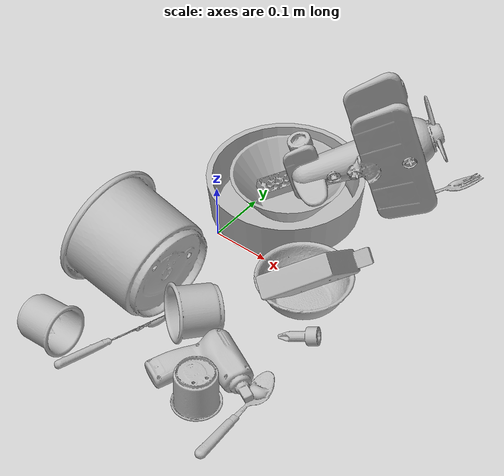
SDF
<sdf version="1.4">
  <world name="default">
    <light name="light1" type="point">
      <pose>0 0 1 0 0 0</pose>
      <diffuse>3 3 3 1</diffuse>
      <specular>3 3 3 1</specular>
    </light>
    <light name="light2" type="point">
      <pose>0 0.5 2 0 0 0</pose>
      <diffuse>1 1 1 1</diffuse>
      <specular>1 1 1 1</specular>
    </light>
    <light name="light3" type="point">
      <pose>0 0.5 2 0 0 0</pose>
      <diffuse>3 3 3 1</diffuse>
      <specular>3 3 3 1</specular>
    </light>
    <scene>
      <ambient>0.7 0.7 0.7</ambient>
    </scene>
    <model name="plate1">
      <link name="link_plate1">
        <collision name="default">
          <geometry>
            <mesh>
              <uri>model://pan_tefal/collision_meshes/collision.obj</uri>
              <scale>1.0 1.0 1.0</scale>
            </mesh>
          </geometry>
          <surface>
            <friction>
              <ode>
                <mu>0.5</mu>
                <mu2>0.5</mu2>
              </ode>
            </friction>
          <contact>
        <ode>
            <max_vel>0</max_vel>
            <min_depth>0.0001</min_depth>
            <kp>1e8</kp>
        </ode>
    </contact></surface>
        </collision>
        <visual name="default">
          <geometry>
            <mesh>
              <uri>model://pan_tefal/visual_meshes/visual.dae</uri>
              <scale>1.0 1.0 1.0</scale>
            </mesh>
          </geometry>
        </visual>
        <inertial>
          <mass>1.2414644956588745</mass>
          <pose>-0.0001800298341549933 3.278589065303095e-05 -0.00851493515074253 0.0008190165640447202 -0.0003301348973125405 -0.33185319573483557</pose>
          <inertia>
            <ixx>0.00856977</ixx>
            <iyy>0.008625018</iyy>
            <izz>0.015775295</izz>
            <ixy>0</ixy>
            <ixz>0</ixz>
            <iyz>0</iyz>
          </inertia>
        </inertial>
      </link>
      <pose>0.05006646364927292 0.11798125505447388 0.03796384483575821 -0.0004901761708740189 -0.00046323320975314347 0.4668485131363899</pose>
    </model>
    <model name="cup1">
      <link name="link_cup1">
        <collision name="default">
          <geometry>
            <mesh>
              <uri>model://j_cups/collision_meshes/collision.obj</uri>
              <scale>2.0 2.0 2.0</scale>
            </mesh>
          </geometry>
          <surface>
            <friction>
              <ode>
                <mu>0.5</mu>
                <mu2>0.5</mu2>
              </ode>
            </friction>
          <contact>
        <ode>
            <max_vel>0</max_vel>
            <min_depth>0.0001</min_depth>
            <kp>1e8</kp>
        </ode>
    </contact></surface>
        </collision>
        <visual name="default">
          <geometry>
            <mesh>
              <uri>model://j_cups/visual_meshes/visual.dae</uri>
              <scale>2.0 2.0 2.0</scale>
            </mesh>
          </geometry>
        </visual>
        <inertial>
          <mass>0.42814481258392334</mass>
          <pose>0.0012329709716141224 0.0010797895956784487 -0.002695801667869091 0.030303634199985552 0.037580068488308346 0.43868666904956827</pose>
          <inertia>
            <ixx>0.0025146077</ixx>
            <iyy>0.0025407567</iyy>
            <izz>0.0028988216</izz>
            <ixy>0</ixy>
            <ixz>0</ixz>
            <iyz>0</iyz>
          </inertia>
        </inertial>
      </link>
      <pose>-0.01062968373298645 -0.1829283982515335 0.09429340809583664 -1.4235240510137792 0.5569511798065968 1.569264719696219</pose>
    </model>
    <model name="silverware1">
      <link name="link_silverware1">
        <collision name="default">
          <geometry>
            <mesh>
              <uri>model://fork/collision_meshes/collision.obj</uri>
              <scale>1.0 1.0 1.0</scale>
            </mesh>
          </geometry>
          <surface>
            <friction>
              <ode>
                <mu>0.5</mu>
                <mu2>0.5</mu2>
              </ode>
            </friction>
          <contact>
        <ode>
            <max_vel>0</max_vel>
            <min_depth>0.0001</min_depth>
            <kp>1e8</kp>
        </ode>
    </contact></surface>
        </collision>
        <visual name="default">
          <geometry>
            <mesh>
              <uri>model://fork/visual_meshes/visual.dae</uri>
              <scale>1.0 1.0 1.0</scale>
            </mesh>
          </geometry>
        </visual>
        <inertial>
          <mass>0.013809523545205593</mass>
          <pose>-0.029570044949650764 0.0004658822435885668 0.00032188615296036005 -0.013551743215227608 -0.010977837587661193 0.014453899243146438</pose>
          <inertia>
            <ixx>4.84102e-07</ixx>
            <iyy>3.6052697e-05</iyy>
            <izz>3.6269223e-05</izz>
            <ixy>0</ixy>
            <ixz>0</ixz>
            <iyz>0</iyz>
          </inertia>
        </inertial>
      </link>
      <pose>0.22179487347602844 0.2940064072608948 0.005730495322495699 -0.18519065526674178 0.024507565751693005 1.097663109065762</pose>
    </model>
    <model name="silverware2">
      <link name="link_silverware2">
        <collision name="default">
          <geometry>
            <mesh>
              <uri>model://knife/collision_meshes/collision.obj</uri>
              <scale>1.0 1.0 1.0</scale>
            </mesh>
          </geometry>
          <surface>
            <friction>
              <ode>
                <mu>0.5</mu>
                <mu2>0.5</mu2>
              </ode>
            </friction>
          <contact>
        <ode>
            <max_vel>0</max_vel>
            <min_depth>0.0001</min_depth>
            <kp>1e8</kp>
        </ode>
    </contact></surface>
        </collision>
        <visual name="default">
          <geometry>
            <mesh>
              <uri>model://knife/visual_meshes/visual.dae</uri>
              <scale>1.0 1.0 1.0</scale>
            </mesh>
          </geometry>
        </visual>
        <inertial>
          <mass>0.021972408518195152</mass>
          <pose>-0.023785250261425972 0.0015275123296305537 5.0620161346159875e-05 0.07305788583029697 0.01724841890740089 -0.007409824444555058</pose>
          <inertia>
            <ixx>6.2366604e-07</ixx>
            <iyy>8.441444e-05</iyy>
            <izz>8.46153e-05</izz>
            <ixy>0</ixy>
            <ixz>0</ixz>
            <iyz>0</iyz>
          </inertia>
        </inertial>
      </link>
      <pose>0.03301829844713211 -0.29524698853492737 0.008920611813664436 -0.8994075356330661 0.00419712599233709 1.2602644309417705</pose>
    </model>
    <model name="silverware3">
      <link name="link_silverware3">
        <collision name="default">
          <geometry>
            <mesh>
              <uri>model://spoon/collision_meshes/collision.obj</uri>
              <scale>1.0 1.0 1.0</scale>
            </mesh>
          </geometry>
          <surface>
            <friction>
              <ode>
                <mu>0.5</mu>
                <mu2>0.5</mu2>
              </ode>
            </friction>
          <contact>
        <ode>
            <max_vel>0</max_vel>
            <min_depth>0.0001</min_depth>
            <kp>1e8</kp>
        </ode>
    </contact></surface>
        </collision>
        <visual name="default">
          <geometry>
            <mesh>
              <uri>model://spoon/visual_meshes/visual.dae</uri>
              <scale>1.0 1.0 1.0</scale>
            </mesh>
          </geometry>
        </visual>
        <inertial>
          <mass>0.026694269850850105</mass>
          <pose>-0.005526325199753046 -0.0016034168656915426 -0.0007271653739735484 0.035216710718480135 -0.03906584501417282 0.00615060951780049</pose>
          <inertia>
            <ixx>1.484779e-06</ixx>
            <iyy>0.000101570804</iyy>
            <izz>0.000102303035</izz>
            <ixy>0</ixy>
            <ixz>0</ixz>
            <iyz>0</iyz>
          </inertia>
        </inertial>
      </link>
      <pose>0.28143927454948425 -0.30137524008750916 0.008342420682311058 -0.09182499700385206 0.025790426752216787 1.6401128008942205</pose>
    </model>
    <model name="cup3">
      <link name="link_cup3">
        <collision name="default">
          <geometry>
            <mesh>
              <uri>model://f_cups/collision_meshes/collision.obj</uri>
              <scale>1.0 1.0 1.0</scale>
            </mesh>
          </geometry>
          <surface>
            <friction>
              <ode>
                <mu>0.5</mu>
                <mu2>0.5</mu2>
              </ode>
            </friction>
          <contact>
        <ode>
            <max_vel>0</max_vel>
            <min_depth>0.0001</min_depth>
            <kp>1e8</kp>
        </ode>
    </contact></surface>
        </collision>
        <visual name="default">
          <geometry>
            <mesh>
              <uri>model://f_cups/visual_meshes/visual.dae</uri>
              <scale>1.0 1.0 1.0</scale>
            </mesh>
          </geometry>
        </visual>
        <inertial>
          <mass>0.09255705773830414</mass>
          <pose>-0.0031714672222733498 -0.0006240062648430467 -0.0036555363330990076 0.7862294428046025 -0.26079256257201844 -0.18237393521905715</pose>
          <inertia>
            <ixx>8.700612e-05</ixx>
            <iyy>9.127041e-05</iyy>
            <izz>9.501506e-05</izz>
            <ixy>0</ixy>
            <ixz>0</ixz>
            <iyz>0</iyz>
          </inertia>
        </inertial>
      </link>
      <pose>0.2149813324213028 -0.31102120876312256 0.036303818225860596 3.1415634831756893 4.2975695002306134e-05 -1.3698700192845634</pose>
    </model>
    <model name="cup4">
      <link name="link_cup4">
        <collision name="default">
          <geometry>
            <mesh>
              <uri>model://g_cups/collision_meshes/collision.obj</uri>
              <scale>1.0 1.0 1.0</scale>
            </mesh>
          </geometry>
          <surface>
            <friction>
              <ode>
                <mu>0.5</mu>
                <mu2>0.5</mu2>
              </ode>
            </friction>
          <contact>
        <ode>
            <max_vel>0</max_vel>
            <min_depth>0.0001</min_depth>
            <kp>1e8</kp>
        </ode>
    </contact></surface>
        </collision>
        <visual name="default">
          <geometry>
            <mesh>
              <uri>model://g_cups/visual_meshes/visual.dae</uri>
              <scale>1.0 1.0 1.0</scale>
            </mesh>
          </geometry>
        </visual>
        <inertial>
          <mass>0.09045539051294327</mass>
          <pose>-0.0007946272380650043 -4.206356970826164e-05 -0.0021329366136342287 -0.21382427470227655 -0.31410603394020525 0.31120189460551634</pose>
          <inertia>
            <ixx>0.000105581705</ixx>
            <iyy>0.000105222556</iyy>
            <izz>0.000109364446</izz>
            <ixy>0</ixy>
            <ixz>0</ixz>
            <iyz>0</iyz>
          </inertia>
        </inertial>
      </link>
      <pose>-0.04968921095132828 -0.35504260659217834 0.040030587464571 1.3048498937528477 -1.1772373893330441 1.788516306007703</pose>
    </model>
    <model name="cup5">
      <link name="link_cup5">
        <collision name="default">
          <geometry>
            <mesh>
              <uri>model://i_cups/collision_meshes/collision.obj</uri>
              <scale>1.0 1.0 1.0</scale>
            </mesh>
          </geometry>
          <surface>
            <friction>
              <ode>
                <mu>0.5</mu>
                <mu2>0.5</mu2>
              </ode>
            </friction>
          <contact>
        <ode>
            <max_vel>0</max_vel>
            <min_depth>0.0001</min_depth>
            <kp>1e8</kp>
        </ode>
    </contact></surface>
        </collision>
        <visual name="default">
          <geometry>
            <mesh>
              <uri>model://i_cups/visual_meshes/visual.dae</uri>
              <scale>1.0 1.0 1.0</scale>
            </mesh>
          </geometry>
        </visual>
        <inertial>
          <mass>0.0815454050898552</mass>
          <pose>0.0001123997790273279 0.00016797320859041065 -0.0008579009445384145 -0.02898318353055437 -0.03987301779891007 -0.3459082462056558</pose>
          <inertia>
            <ixx>0.0001129008</ixx>
            <iyy>0.000113895556</iyy>
            <izz>0.00012618494</izz>
            <ixy>0</ixy>
            <ixz>0</ixz>
            <iyz>0</iyz>
          </inertia>
        </inertial>
      </link>
      <pose>0.11493223160505295 -0.1942950189113617 0.04484616965055466 -0.34864573817462347 1.4337127328542698 -2.5308164459731772</pose>
    </model>
    <model name="bowl1">
      <link name="link_bowl1">
        <collision name="default">
          <geometry>
            <mesh>
              <uri>model://bowl/collision_meshes/collision.obj</uri>
              <scale>1.0 1.0 1.0</scale>
            </mesh>
          </geometry>
          <surface>
            <friction>
              <ode>
                <mu>0.5</mu>
                <mu2>0.5</mu2>
              </ode>
            </friction>
          <contact>
        <ode>
            <max_vel>0</max_vel>
            <min_depth>0.0001</min_depth>
            <kp>1e8</kp>
        </ode>
    </contact></surface>
        </collision>
        <visual name="default">
          <geometry>
            <mesh>
              <uri>model://bowl/visual_meshes/visual.dae</uri>
              <scale>1.0 1.0 1.0</scale>
            </mesh>
          </geometry>
        </visual>
        <inertial>
          <mass>0.1349102407693863</mass>
          <pose>0.00020445192058105022 -0.0010302069131284952 -0.0008042648551054299 -0.01576408127006171 0.01454679335072616 0.7140405111038781</pose>
          <inertia>
            <ixx>0.00030989948</ixx>
            <iyy>0.00030297515</iyy>
            <izz>0.0005213576</izz>
            <ixy>0</ixy>
            <ixz>0</ixz>
            <iyz>0</iyz>
          </inertia>
        </inertial>
      </link>
      <pose>0.20711466670036316 -0.032956987619400024 0.027783427387475967 4.306224316180432e-07 -8.65336272940616e-05 2.241744721755052</pose>
    </model>
    <model name="bowl2">
      <link name="link_bowl2">
        <collision name="default">
          <geometry>
            <mesh>
              <uri>model://bowl_a/collision_meshes/collision.obj</uri>
              <scale>1.0 1.0 1.0</scale>
            </mesh>
          </geometry>
          <surface>
            <friction>
              <ode>
                <mu>0.5</mu>
                <mu2>0.5</mu2>
              </ode>
            </friction>
          <contact>
        <ode>
            <max_vel>0</max_vel>
            <min_depth>0.0001</min_depth>
            <kp>1e8</kp>
        </ode>
    </contact></surface>
        </collision>
        <visual name="default">
          <geometry>
            <mesh>
              <uri>model://bowl_a/visual_meshes/visual.dae</uri>
              <scale>1.0 1.0 1.0</scale>
            </mesh>
          </geometry>
        </visual>
        <inertial>
          <mass>0.4816342294216156</mass>
          <pose>0.000278677063761279 4.73155923828017e-05 -0.0013765296898782253 -0.0009805427744981278 -0.0010938171301827632 -0.19123023792191385</pose>
          <inertia>
            <ixx>0.0013712347</ixx>
            <iyy>0.0013796532</iyy>
            <izz>0.0024387941</izz>
            <ixy>0</ixy>
            <ixz>0</ixz>
            <iyz>0</iyz>
          </inertia>
        </inertial>
      </link>
      <pose>0.045578733086586 0.1304551661014557 0.038097038865089417 -0.001976055692969265 -0.0030248300072820244 -0.7079464863205154</pose>
    </model>
    <model name="toy1">
      <link name="link_toy1">
        <collision name="default">
          <geometry>
            <mesh>
              <uri>model://a_toy_airplane/collision_meshes/collision.obj</uri>
              <scale>1.0 1.0 1.0</scale>
            </mesh>
          </geometry>
          <surface>
            <friction>
              <ode>
                <mu>0.5</mu>
                <mu2>0.5</mu2>
              </ode>
            </friction>
          <contact>
        <ode>
            <max_vel>0</max_vel>
            <min_depth>0.0001</min_depth>
            <kp>1e8</kp>
        </ode>
    </contact></surface>
        </collision>
        <visual name="default">
          <geometry>
            <mesh>
              <uri>model://a_toy_airplane/visual_meshes/visual.dae</uri>
              <scale>1.0 1.0 1.0</scale>
            </mesh>
          </geometry>
        </visual>
        <inertial>
          <mass>1.6936675310134888</mass>
          <pose>0.025165095925331116 -0.0037073225248605013 -0.0011962444987148046 -0.01201699252327453 -0.146634996228158 0.004149091382990828</pose>
          <inertia>
            <ixx>0.0061505185</ixx>
            <iyy>0.008962553</iyy>
            <izz>0.010494047</izz>
            <ixy>0</ixy>
            <ixz>0</ixz>
            <iyz>0</iyz>
          </inertia>
        </inertial>
      </link>
      <pose>0.14616209268569946 0.20556402206420898 0.11634231358766556 1.5340355271741715 -0.2619067222896217 1.0226134779966076</pose>
    </model>
    <model name="toy2">
      <link name="link_toy2">
        <collision name="default">
          <geometry>
            <mesh>
              <uri>model://c_lego_duplo/collision_meshes/collision.obj</uri>
              <scale>1.0 1.0 1.0</scale>
            </mesh>
          </geometry>
          <surface>
            <friction>
              <ode>
                <mu>0.5</mu>
                <mu2>0.5</mu2>
              </ode>
            </friction>
          <contact>
        <ode>
            <max_vel>0</max_vel>
            <min_depth>0.0001</min_depth>
            <kp>1e8</kp>
        </ode>
    </contact></surface>
        </collision>
        <visual name="default">
          <geometry>
            <mesh>
              <uri>model://c_lego_duplo/visual_meshes/visual.dae</uri>
              <scale>1.0 1.0 1.0</scale>
            </mesh>
          </geometry>
        </visual>
        <inertial>
          <mass>0.01636073924601078</mass>
          <pose>0.000316459103487432 0.0001946457487065345 0.001045315177179873 -0.01152079658800189 0.005900071110555828 0.03110036538654021</pose>
          <inertia>
            <ixx>6.295917e-06</ixx>
            <iyy>2.0111436e-06</iyy>
            <izz>7.357428e-06</izz>
            <ixy>0</ixy>
            <ixz>0</ixz>
            <iyz>0</iyz>
          </inertia>
        </inertial>
      </link>
      <pose>0.021436311304569244 0.13228511810302734 0.02693936601281166 3.106951032691201 0.19261260500574198 -0.38094661883059433</pose>
    </model>
    <model name="toy3">
      <link name="link_toy3">
        <collision name="default">
          <geometry>
            <mesh>
              <uri>model://nine_hole_peg_test/collision_meshes/collision.obj</uri>
              <scale>1.0 1.0 1.0</scale>
            </mesh>
          </geometry>
          <surface>
            <friction>
              <ode>
                <mu>0.5</mu>
                <mu2>0.5</mu2>
              </ode>
            </friction>
          <contact>
        <ode>
            <max_vel>0</max_vel>
            <min_depth>0.0001</min_depth>
            <kp>1e8</kp>
        </ode>
    </contact></surface>
        </collision>
        <visual name="default">
          <geometry>
            <mesh>
              <uri>model://nine_hole_peg_test/visual_meshes/visual.dae</uri>
              <scale>1.0 1.0 1.0</scale>
            </mesh>
          </geometry>
        </visual>
        <inertial>
          <mass>0.9464474320411682</mass>
          <pose>-0.004617386497557163 -0.009647613391280174 2.646068787726108e-05 -0.0014666793204268175 0.0007194166079670136 -0.6342420609245715</pose>
          <inertia>
            <ixx>0.0014799263</ixx>
            <iyy>0.0013817915</iyy>
            <izz>0.002593267</izz>
            <ixy>0</ixy>
            <ixz>0</ixz>
            <iyz>0</iyz>
          </inertia>
        </inertial>
      </link>
      <pose>0.23356781899929047 -0.03965446352958679 0.08442380279302597 2.484053560109091 0.6505704510677516 1.7385921150826866</pose>
    </model>
    <model name="toy4">
      <link name="link_toy4">
        <collision name="default">
          <geometry>
            <mesh>
              <uri>model://d_toy_airplane/collision_meshes/collision.obj</uri>
              <scale>1.0 1.0 1.0</scale>
            </mesh>
          </geometry>
          <surface>
            <friction>
              <ode>
                <mu>0.5</mu>
                <mu2>0.5</mu2>
              </ode>
            </friction>
          <contact>
        <ode>
            <max_vel>0</max_vel>
            <min_depth>0.0001</min_depth>
            <kp>1e8</kp>
        </ode>
    </contact></surface>
        </collision>
        <visual name="default">
          <geometry>
            <mesh>
              <uri>model://d_toy_airplane/visual_meshes/visual.dae</uri>
              <scale>1.0 1.0 1.0</scale>
            </mesh>
          </geometry>
        </visual>
        <inertial>
          <mass>0.021776849403977394</mass>
          <pose>9.410295024281368e-05 -5.809321373817511e-05 -0.011728097684681416 0.0002661671660100631 0.004679022103859929 0.519291232465637</pose>
          <inertia>
            <ixx>6.5282748e-06</ixx>
            <iyy>6.5331997e-06</iyy>
            <izz>1.9709291e-06</izz>
            <ixy>0</ixy>
            <ixz>0</ixz>
            <iyz>0</iyz>
          </inertia>
        </inertial>
      </link>
      <pose>0.25704026222229004 -0.11087937653064728 0.01163245365023613 -1.7938170686134383 0.4057864665042525 1.9684698678562897</pose>
    </model>
    <model name="toy5">
      <link name="link_toy5">
        <collision name="default">
          <geometry>
            <mesh>
              <uri>model://b_toy_airplane/collision_meshes/collision.obj</uri>
              <scale>1.0 1.0 1.0</scale>
            </mesh>
          </geometry>
          <surface>
            <friction>
              <ode>
                <mu>0.5</mu>
                <mu2>0.5</mu2>
              </ode>
            </friction>
          <contact>
        <ode>
            <max_vel>0</max_vel>
            <min_depth>0.0001</min_depth>
            <kp>1e8</kp>
        </ode>
    </contact></surface>
        </collision>
        <visual name="default">
          <geometry>
            <mesh>
              <uri>model://b_toy_airplane/visual_meshes/visual.dae</uri>
              <scale>1.0 1.0 1.0</scale>
            </mesh>
          </geometry>
        </visual>
        <inertial>
          <mass>0.25237053632736206</mass>
          <pose>0.00508136348798871 0.004015584476292133 0.00954306498169899 -0.04001808288480986 -0.0402218063825515 -0.5601503558886168</pose>
          <inertia>
            <ixx>0.00046853055</ixx>
            <iyy>0.00018727628</iyy>
            <izz>0.0005828988</izz>
            <ixy>0</ixy>
            <ixz>0</ixz>
            <iyz>0</iyz>
          </inertia>
        </inertial>
      </link>
      <pose>0.1866248995065689 -0.2526226043701172 0.016977788880467415 0.18486857712921106 0.113479095140714 -0.427291792946136</pose>
    </model>
  <physics type="ode">
      <max_contacts>50</max_contacts>
      <ode>
        <solver>
          <type>quick</type>
          <iters>75</iters>
        </solver>
        <constraints>
          <contact_max_correcting_vel>0</contact_max_correcting_vel>
          <contact_surface_layer>0</contact_surface_layer>
        </constraints>
      </ode>
    </physics></world>
</sdf>
